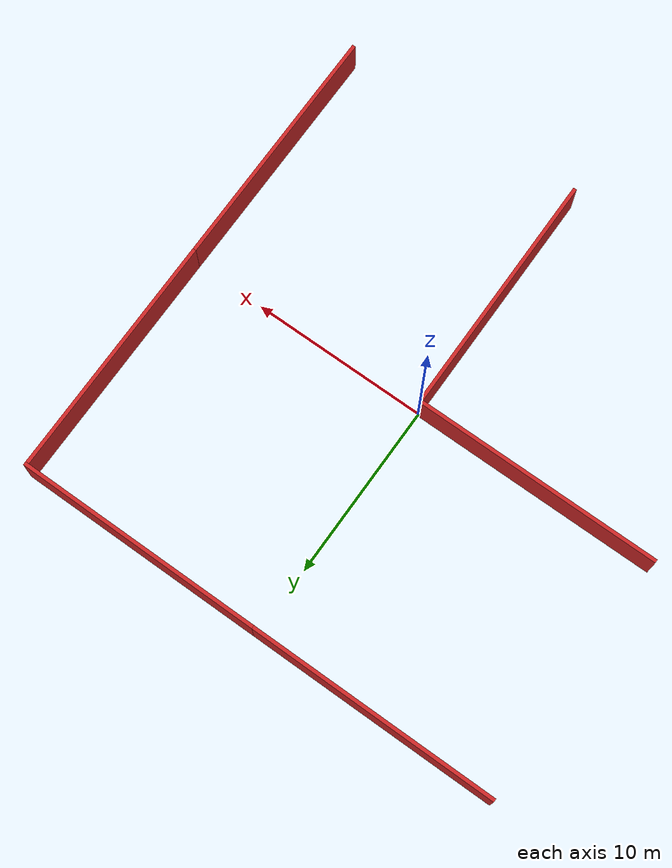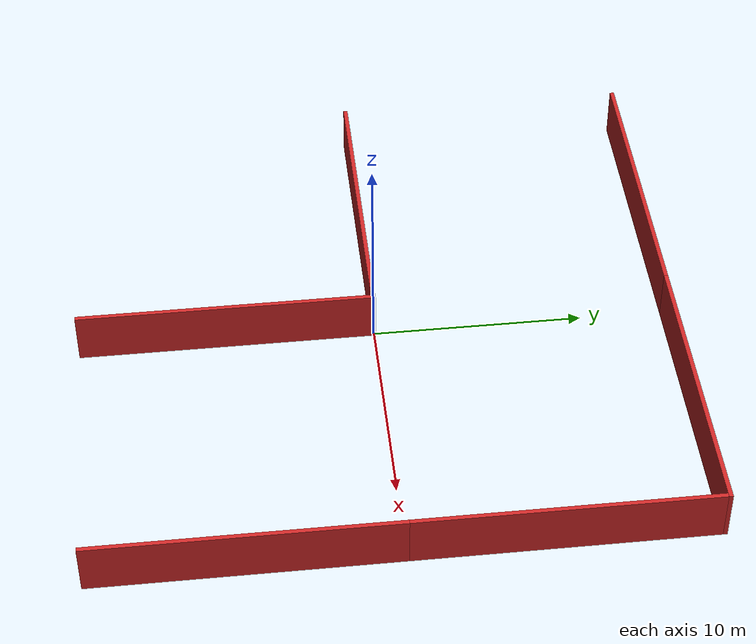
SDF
<?xml version='1.0'?>
<sdf version='1.4'>
  <model name='right_angle_turn'>
    <link name='Wall_0'>
      <collision name='Wall_0_Collision'>
        <geometry>
          <box>
            <size>14.1 0.2 2.5</size>
          </box>
        </geometry>
        <pose>0 0 1.25 0 -0 0</pose>
      </collision>
      <visual name='Wall_0_Visual'>
        <pose>0 0 1.25 0 -0 0</pose>
        <geometry>
          <box>
            <size>14.1 0.2 2.5</size>
          </box>
        </geometry>
        <material>
          <script>
            <uri>model://materials/scripts</uri>
             <uri>model://materials/textures</uri>
             <name>vrc/red_wall_x4</name>
          </script>
        </material>
      </visual>
      <velocity_decay>
        <linear>0</linear>
        <angular>0</angular>
      </velocity_decay>
      <pose>0 -6.95 0 0 0 -1.5708</pose>
    </link>
    <link name='Wall_10'>
      <collision name='Wall_10_Collision'>
        <geometry>
          <box>
            <size>13.8 0.2 2.5</size>
          </box>
        </geometry>
        <pose>0 0 1.25 0 -0 0</pose>
      </collision>
      <visual name='Wall_10_Visual'>
        <pose>0 0 1.25 0 -0 0</pose>
        <geometry>
          <box>
            <size>13.8 0.2 2.5</size>
          </box>
        </geometry>
        <material>
          <script>
            <uri>model://materials/scripts</uri>
             <uri>model://materials/textures</uri>
             <name>vrc/red_wall_x4</name>
          </script>
        </material>
      </visual>
      <velocity_decay>
        <linear>0</linear>
        <angular>0</angular>
      </velocity_decay>
      <pose>14 7 0 0 0 -1.5708</pose>
    </link>
    <link name='Wall_2'>
      <collision name='Wall_2_Collision'>
        <geometry>
          <box>
            <size>13.9 0.2 2.5</size>
          </box>
        </geometry>
        <pose>0 0 1.25 0 -0 0</pose>
      </collision>
      <visual name='Wall_2_Visual'>
        <pose>0 0 1.25 0 -0 0</pose>
        <geometry>
          <box>
            <size>13.9 0.2 2.5</size>
          </box>
        </geometry>
        <material>
          <script>
            <uri>model://materials/scripts</uri>
             <uri>model://materials/textures</uri>
             <name>vrc/red_wall_x4</name>
          </script>
        </material>
      </visual>
      <velocity_decay>
        <linear>0</linear>
        <angular>0</angular>
      </velocity_decay>
      <pose>-7.05 0 0 0 -0 3.14159</pose>
    </link>
    <link name='Wall_4'>
      <collision name='Wall_4_Collision'>
        <geometry>
          <box>
            <size>14.1 0.2 2.5</size>
          </box>
        </geometry>
        <pose>0 0 1.25 0 -0 0</pose>
      </collision>
      <visual name='Wall_4_Visual'>
        <pose>0 0 1.25 0 -0 0</pose>
        <geometry>
          <box>
            <size>14.1 0.2 2.5</size>
          </box>
        </geometry>
        <material>
          <script>
           <uri>model://materials/scripts</uri>
             <uri>model://materials/textures</uri>
             <name>vrc/red_wall_x4</name>
          </script>
        </material>
      </visual>
      <velocity_decay>
        <linear>0</linear>
        <angular>0</angular>
      </velocity_decay>
      <pose>14 -6.95 0 0 -0 1.5708</pose>
    </link>
    <link name='Wall_6'>
      <collision name='Wall_6_Collision'>
        <geometry>
          <box>
            <size>14.1 0.2 2.5</size>
          </box>
        </geometry>
        <pose>0 0 1.25 0 -0 0</pose>
      </collision>
      <visual name='Wall_6_Visual'>
        <pose>0 0 1.25 0 -0 0</pose>
        <geometry>
          <box>
            <size>14.1 0.2 2.5</size>
          </box>
        </geometry>
        <material>
          <script>
            <uri>model://materials/scripts</uri>
             <uri>model://materials/textures</uri>
             <name>vrc/red_wall_x4</name>
          </script>
        </material>
      </visual>
      <velocity_decay>
        <linear>0</linear>
        <angular>0</angular>
      </velocity_decay>
      <pose>-6.95 14 0 0 -0 0</pose>
    </link>
    <link name='Wall_8'>
      <collision name='Wall_8_Collision'>
        <geometry>
          <box>
            <size>14 0.2 2.5</size>
          </box>
        </geometry>
        <pose>0 0 1.25 0 -0 0</pose>
      </collision>
      <visual name='Wall_8_Visual'>
        <pose>0 0 1.25 0 -0 0</pose>
        <geometry>
          <box>
            <size>14 0.2 2.5</size>
          </box>
        </geometry>
        <material>
          <script>
            <uri>model://materials/scripts</uri>
             <uri>model://materials/textures</uri>
             <name>vrc/red_wall_x4</name>
          </script>
        </material>
      </visual>
      <velocity_decay>
        <linear>0</linear>
        <angular>0</angular>
      </velocity_decay>
      <pose>7.1 14 0 0 -0 0</pose>
    </link>
    <static>1</static>
  </model>
</sdf>
